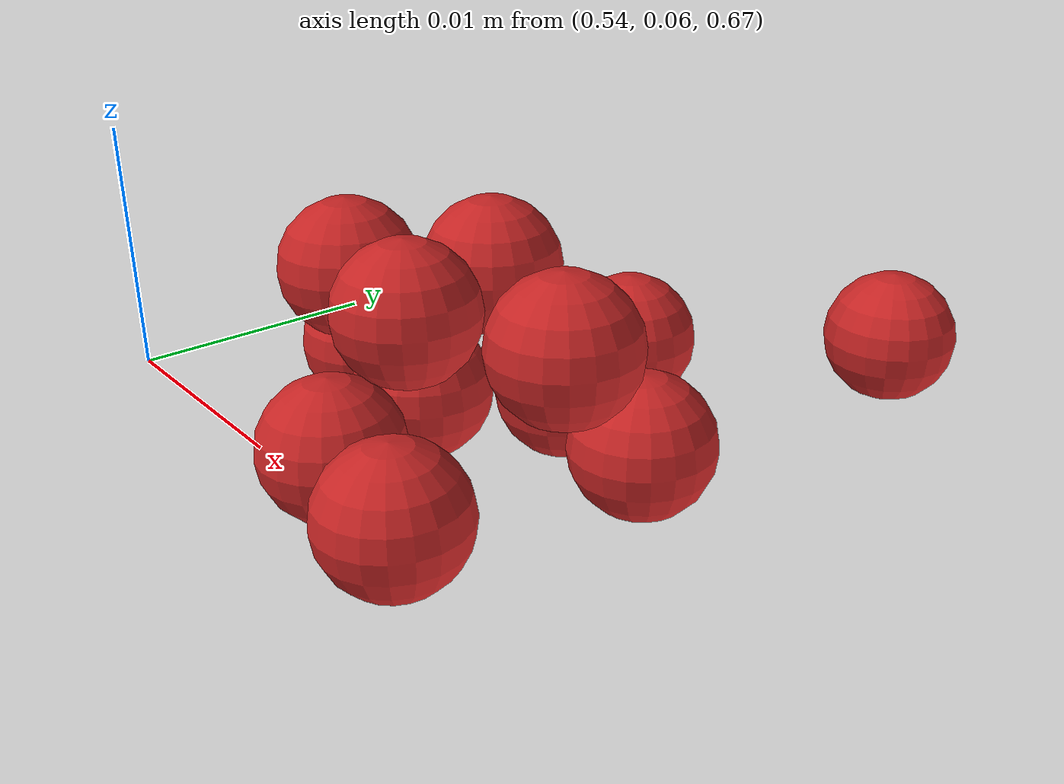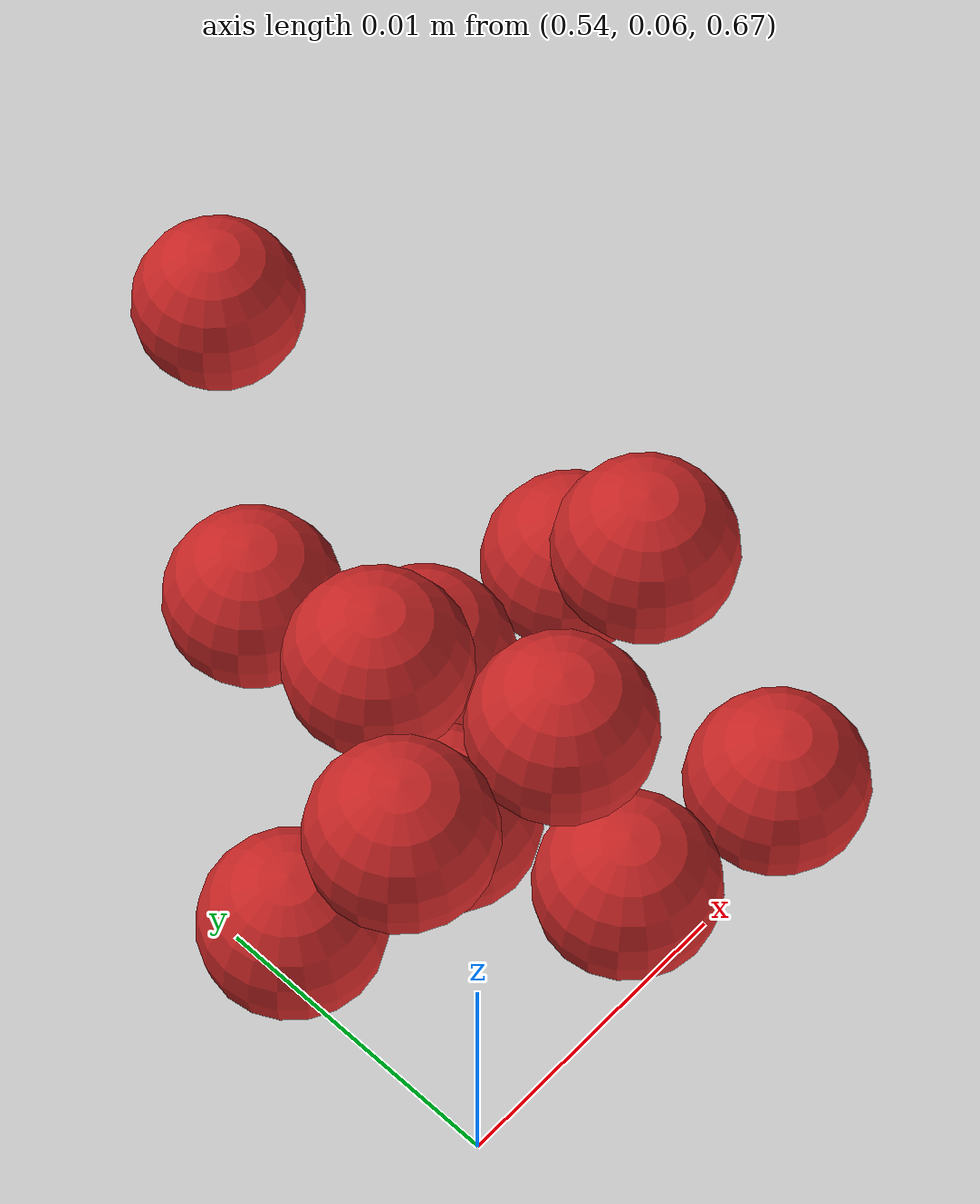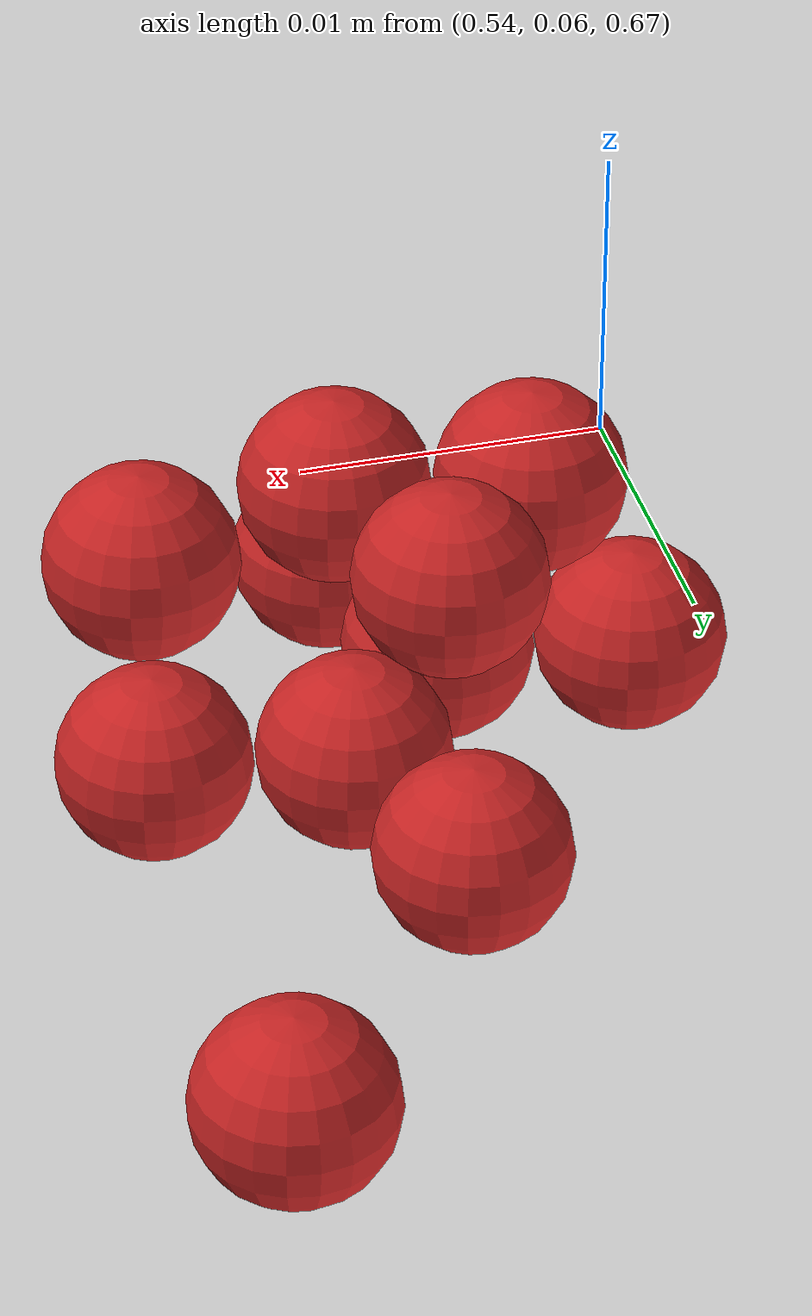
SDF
<sdf version="1.4">
 <world name="default">
  <model name="ground_plane">
   <static>1</static>
   <link name="link">
    <collision name="collision">
     <geometry><plane><normal>0 0 1</normal><size>100 100</size></plane></geometry>
     <surface><friction><ode><mu>100</mu><mu2>50</mu2></ode></friction></surface>
    </collision>
    <visual name="visual">
     <cast_shadows>0</cast_shadows>
     <geometry><plane><normal>0 0 1</normal><size>100 100</size></plane></geometry>
     <material>
      <script><uri>file://media/materials/scripts/gazebo.material</uri><name>Gazebo/Grey</name></script>
     </material>
    </visual>
    <velocity_decay><linear>0</linear><angular>0</angular></velocity_decay>
   </link>
  </model>
  <model name="sphere2">
   <pose>0.003783 -0.004308 -0.026368 0.000322 -0.000606 -2.64698e-23</pose>
   <link name="link">
    <pose>0.546545 0.067517 0.694885 0 -0 0</pose>
    <inertial>
     <mass>1e-08</mass>
     <inertia><ixx>4e-08</ixx><ixy>0</ixy><ixz>0</ixz><iyy>4e-08</iyy><iyz>0</iyz><izz>4e-08</izz></inertia>
    </inertial>
    <collision name="collision">
     <surface>
      <bounce><restitution_coefficient>0.5</restitution_coefficient><threshold>0</threshold></bounce>
      <contact><ode><kp>1e+08</kp><kd>1</kd></ode></contact>
      <friction><ode><mu>1e-06</mu><mu2>1e-06</mu2></ode></friction>
     </surface>
     <geometry><sphere><radius>0.003</radius></sphere></geometry>
    </collision>
    <visual name="visual">
     <geometry><sphere><radius>0.003</radius></sphere></geometry>
     <material>
      <script><uri>file://media/materials/scripts/gazebo.material</uri><name>Gazebo/Red</name></script>
     </material>
    </visual>
    <velocity_decay><linear>0</linear><angular>0</angular></velocity_decay>
   </link>
   <static>0</static>
  </model>
  <model name="sphere6">
   <pose>0.004831 -9.6e-05 -0.02579 0.00028 0.000304 0</pose>
   <link name="link">
    <pose>0.546545 0.073517 0.694885 0 -0 0</pose>
    <inertial>
     <mass>1e-08</mass>
     <inertia><ixx>4e-08</ixx><ixy>0</ixy><ixz>0</ixz><iyy>4e-08</iyy><iyz>0</iyz><izz>4e-08</izz></inertia>
    </inertial>
    <collision name="collision">
     <surface>
      <bounce><restitution_coefficient>0.5</restitution_coefficient><threshold>0</threshold></bounce>
      <contact><ode><kp>1e+08</kp><kd>1</kd></ode></contact>
      <friction><ode><mu>1e-06</mu><mu2>1e-06</mu2></ode></friction>
     </surface>
     <geometry><sphere><radius>0.003</radius></sphere></geometry>
    </collision>
    <visual name="visual">
     <geometry><sphere><radius>0.003</radius></sphere></geometry>
     <material>
      <script><uri>file://media/materials/scripts/gazebo.material</uri><name>Gazebo/Red</name></script>
     </material>
    </visual>
    <velocity_decay><linear>0</linear><angular>0</angular></velocity_decay>
   </link>
   <static>0</static>
  </model>
  <model name="sphere19">
   <pose>0.003403 -0.00545 -0.032095 8.1e-05 -0.000187 -2.3e-05</pose>
   <link name="link">
    <pose>0.552545 0.067517 0.700885 0 -0 0</pose>
    <inertial>
     <mass>1e-08</mass>
     <inertia><ixx>4e-08</ixx><ixy>0</ixy><ixz>0</ixz><iyy>4e-08</iyy><iyz>0</iyz><izz>4e-08</izz></inertia>
    </inertial>
    <collision name="collision">
     <surface>
      <bounce><restitution_coefficient>0.5</restitution_coefficient><threshold>0</threshold></bounce>
      <contact><ode><kp>1e+08</kp><kd>1</kd></ode></contact>
      <friction><ode><mu>1e-06</mu><mu2>1e-06</mu2></ode></friction>
     </surface>
     <geometry><sphere><radius>0.003</radius></sphere></geometry>
    </collision>
    <visual name="visual">
     <geometry><sphere><radius>0.003</radius></sphere></geometry>
     <material>
      <script><uri>file://media/materials/scripts/gazebo.material</uri><name>Gazebo/Red</name></script>
     </material>
    </visual>
    <velocity_decay><linear>0</linear><angular>0</angular></velocity_decay>
   </link>
   <static>0</static>
  </model>
  <model name="sphere55">
   <pose>0.004982 -0.001148 -0.043985 0.000156 -4.6e-05 0</pose>
   <link name="link">
    <pose>0.552545 0.073517 0.712885 0 -0 0</pose>
    <inertial>
     <mass>1e-08</mass>
     <inertia><ixx>4e-08</ixx><ixy>0</ixy><ixz>0</ixz><iyy>4e-08</iyy><iyz>0</iyz><izz>4e-08</izz></inertia>
    </inertial>
    <collision name="collision">
     <surface>
      <bounce><restitution_coefficient>0.5</restitution_coefficient><threshold>0</threshold></bounce>
      <contact><ode><kp>1e+08</kp><kd>1</kd></ode></contact>
      <friction><ode><mu>1e-06</mu><mu2>1e-06</mu2></ode></friction>
     </surface>
     <geometry><sphere><radius>0.003</radius></sphere></geometry>
    </collision>
    <visual name="visual">
     <geometry><sphere><radius>0.003</radius></sphere></geometry>
     <material>
      <script><uri>file://media/materials/scripts/gazebo.material</uri><name>Gazebo/Red</name></script>
     </material>
    </visual>
    <velocity_decay><linear>0</linear><angular>0</angular></velocity_decay>
   </link>
   <static>0</static>
  </model>
  <model name="sphere58">
   <pose>0.002891 -0.000661 -0.043923 3e-05 2.8e-05 0</pose>
   <link name="link">
    <pose>0.546545 0.079517 0.712885 0 -0 0</pose>
    <inertial>
     <mass>1e-08</mass>
     <inertia><ixx>4e-08</ixx><ixy>0</ixy><ixz>0</ixz><iyy>4e-08</iyy><iyz>0</iyz><izz>4e-08</izz></inertia>
    </inertial>
    <collision name="collision">
     <surface>
      <bounce><restitution_coefficient>0.5</restitution_coefficient><threshold>0</threshold></bounce>
      <contact><ode><kp>1e+08</kp><kd>1</kd></ode></contact>
      <friction><ode><mu>1e-06</mu><mu2>1e-06</mu2></ode></friction>
     </surface>
     <geometry><sphere><radius>0.003</radius></sphere></geometry>
    </collision>
    <visual name="visual">
     <geometry><sphere><radius>0.003</radius></sphere></geometry>
     <material>
      <script><uri>file://media/materials/scripts/gazebo.material</uri><name>Gazebo/Red</name></script>
     </material>
    </visual>
    <velocity_decay><linear>0</linear><angular>0</angular></velocity_decay>
   </link>
   <static>0</static>
  </model>
  <model name="sphere65">
   <pose>0.002021 0.001899 -0.050473 -0.000202 -0.000959 2.64698e-23</pose>
   <link name="link">
    <pose>0.540545 0.067517 0.718885 0 -0 0</pose>
    <inertial>
     <mass>1e-08</mass>
     <inertia><ixx>4e-08</ixx><ixy>0</ixy><ixz>0</ixz><iyy>4e-08</iyy><iyz>0</iyz><izz>4e-08</izz></inertia>
    </inertial>
    <collision name="collision">
     <surface>
      <bounce><restitution_coefficient>0.5</restitution_coefficient><threshold>0</threshold></bounce>
      <contact><ode><kp>1e+08</kp><kd>1</kd></ode></contact>
      <friction><ode><mu>1e-06</mu><mu2>1e-06</mu2></ode></friction>
     </surface>
     <geometry><sphere><radius>0.003</radius></sphere></geometry>
    </collision>
    <visual name="visual">
     <geometry><sphere><radius>0.003</radius></sphere></geometry>
     <material>
      <script><uri>file://media/materials/scripts/gazebo.material</uri><name>Gazebo/Red</name></script>
     </material>
    </visual>
    <velocity_decay><linear>0</linear><angular>0</angular></velocity_decay>
   </link>
   <static>0</static>
  </model>
  <model name="sphere66">
   <pose>0.001067 0.001039 -0.049821 -5.1e-05 0.000227 0</pose>
   <link name="link">
    <pose>0.546545 0.067517 0.718885 0 -0 0</pose>
    <inertial>
     <mass>1e-08</mass>
     <inertia><ixx>4e-08</ixx><ixy>0</ixy><ixz>0</ixz><iyy>4e-08</iyy><iyz>0</iyz><izz>4e-08</izz></inertia>
    </inertial>
    <collision name="collision">
     <surface>
      <bounce><restitution_coefficient>0.5</restitution_coefficient><threshold>0</threshold></bounce>
      <contact><ode><kp>1e+08</kp><kd>1</kd></ode></contact>
      <friction><ode><mu>1e-06</mu><mu2>1e-06</mu2></ode></friction>
     </surface>
     <geometry><sphere><radius>0.003</radius></sphere></geometry>
    </collision>
    <visual name="visual">
     <geometry><sphere><radius>0.003</radius></sphere></geometry>
     <material>
      <script><uri>file://media/materials/scripts/gazebo.material</uri><name>Gazebo/Red</name></script>
     </material>
    </visual>
    <velocity_decay><linear>0</linear><angular>0</angular></velocity_decay>
   </link>
   <static>0</static>
  </model>
  <model name="sphere81">
   <pose>0.003977 -0.000167 -0.0511 0 -0 0</pose>
   <link name="link">
    <pose>0.540545 0.067517 0.724885 0 -0 0</pose>
    <inertial>
     <mass>1e-08</mass>
     <inertia><ixx>4e-08</ixx><ixy>0</ixy><ixz>0</ixz><iyy>4e-08</iyy><iyz>0</iyz><izz>4e-08</izz></inertia>
    </inertial>
    <collision name="collision">
     <surface>
      <bounce><restitution_coefficient>0.5</restitution_coefficient><threshold>0</threshold></bounce>
      <contact><ode><kp>1e+08</kp><kd>1</kd></ode></contact>
      <friction><ode><mu>1e-06</mu><mu2>1e-06</mu2></ode></friction>
     </surface>
     <geometry><sphere><radius>0.003</radius></sphere></geometry>
    </collision>
    <visual name="visual">
     <geometry><sphere><radius>0.003</radius></sphere></geometry>
     <material>
      <script><uri>file://media/materials/scripts/gazebo.material</uri><name>Gazebo/Red</name></script>
     </material>
    </visual>
    <velocity_decay><linear>0</linear><angular>0</angular></velocity_decay>
   </link>
   <static>0</static>
  </model>
  <model name="sphere82">
   <pose>0.00391 -0.001172 -0.051073 0 -0 0</pose>
   <link name="link">
    <pose>0.546545 0.067517 0.724885 0 -0 0</pose>
    <inertial>
     <mass>1e-08</mass>
     <inertia><ixx>4e-08</ixx><ixy>0</ixy><ixz>0</ixz><iyy>4e-08</iyy><iyz>0</iyz><izz>4e-08</izz></inertia>
    </inertial>
    <collision name="collision">
     <surface>
      <bounce><restitution_coefficient>0.5</restitution_coefficient><threshold>0</threshold></bounce>
      <contact><ode><kp>1e+08</kp><kd>1</kd></ode></contact>
      <friction><ode><mu>1e-06</mu><mu2>1e-06</mu2></ode></friction>
     </surface>
     <geometry><sphere><radius>0.003</radius></sphere></geometry>
    </collision>
    <visual name="visual">
     <geometry><sphere><radius>0.003</radius></sphere></geometry>
     <material>
      <script><uri>file://media/materials/scripts/gazebo.material</uri><name>Gazebo/Red</name></script>
     </material>
    </visual>
    <velocity_decay><linear>0</linear><angular>0</angular></velocity_decay>
   </link>
   <static>0</static>
  </model>
  <model name="sphere83">
   <pose>0.004457 0.001304 -0.051078 0 -0 0</pose>
   <link name="link">
    <pose>0.552545 0.067517 0.724885 0 -0 0</pose>
    <inertial>
     <mass>1e-08</mass>
     <inertia><ixx>4e-08</ixx><ixy>0</ixy><ixz>0</ixz><iyy>4e-08</iyy><iyz>0</iyz><izz>4e-08</izz></inertia>
    </inertial>
    <collision name="collision">
     <surface>
      <bounce><restitution_coefficient>0.5</restitution_coefficient><threshold>0</threshold></bounce>
      <contact><ode><kp>1e+08</kp><kd>1</kd></ode></contact>
      <friction><ode><mu>1e-06</mu><mu2>1e-06</mu2></ode></friction>
     </surface>
     <geometry><sphere><radius>0.003</radius></sphere></geometry>
    </collision>
    <visual name="visual">
     <geometry><sphere><radius>0.003</radius></sphere></geometry>
     <material>
      <script><uri>file://media/materials/scripts/gazebo.material</uri><name>Gazebo/Red</name></script>
     </material>
    </visual>
    <velocity_decay><linear>0</linear><angular>0</angular></velocity_decay>
   </link>
   <static>0</static>
  </model>
  <model name="sphere86">
   <pose>0.001787 -0.001521 -0.051065 0 -0 0</pose>
   <link name="link">
    <pose>0.546545 0.073517 0.724885 0 -0 0</pose>
    <inertial>
     <mass>1e-08</mass>
     <inertia><ixx>4e-08</ixx><ixy>0</ixy><ixz>0</ixz><iyy>4e-08</iyy><iyz>0</iyz><izz>4e-08</izz></inertia>
    </inertial>
    <collision name="collision">
     <surface>
      <bounce><restitution_coefficient>0.5</restitution_coefficient><threshold>0</threshold></bounce>
      <contact><ode><kp>1e+08</kp><kd>1</kd></ode></contact>
      <friction><ode><mu>1e-06</mu><mu2>1e-06</mu2></ode></friction>
     </surface>
     <geometry><sphere><radius>0.003</radius></sphere></geometry>
    </collision>
    <visual name="visual">
     <geometry><sphere><radius>0.003</radius></sphere></geometry>
     <material>
      <script><uri>file://media/materials/scripts/gazebo.material</uri><name>Gazebo/Red</name></script>
     </material>
    </visual>
    <velocity_decay><linear>0</linear><angular>0</angular></velocity_decay>
   </link>
   <static>0</static>
  </model>
  <model name="sphere95">
   <pose>0.004632 0.00231 -0.056008 -0.000406 -0.0002 0</pose>
   <link name="link">
    <pose>0.552545 0.085517 0.724885 0 -0 0</pose>
    <inertial>
     <mass>1e-08</mass>
     <inertia><ixx>4e-08</ixx><ixy>0</ixy><ixz>0</ixz><iyy>4e-08</iyy><iyz>0</iyz><izz>4e-08</izz></inertia>
    </inertial>
    <collision name="collision">
     <surface>
      <bounce><restitution_coefficient>0.5</restitution_coefficient><threshold>0</threshold></bounce>
      <contact><ode><kp>1e+08</kp><kd>1</kd></ode></contact>
      <friction><ode><mu>1e-06</mu><mu2>1e-06</mu2></ode></friction>
     </surface>
     <geometry><sphere><radius>0.003</radius></sphere></geometry>
    </collision>
    <visual name="visual">
     <geometry><sphere><radius>0.003</radius></sphere></geometry>
     <material>
      <script><uri>file://media/materials/scripts/gazebo.material</uri><name>Gazebo/Red</name></script>
     </material>
    </visual>
    <velocity_decay><linear>0</linear><angular>0</angular></velocity_decay>
   </link>
   <static>0</static>
  </model>
 </world>
</sdf>
